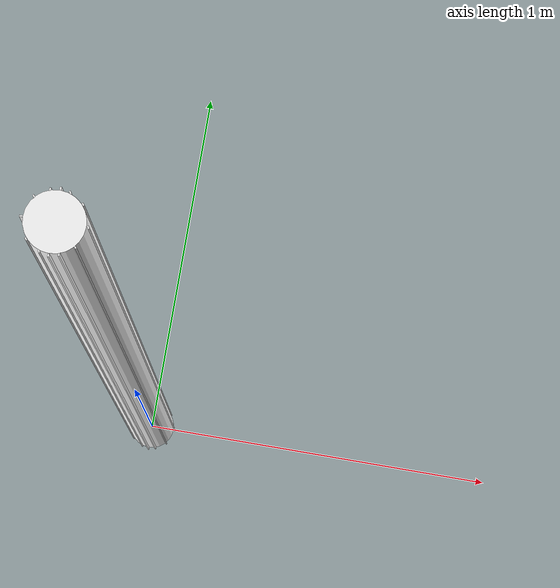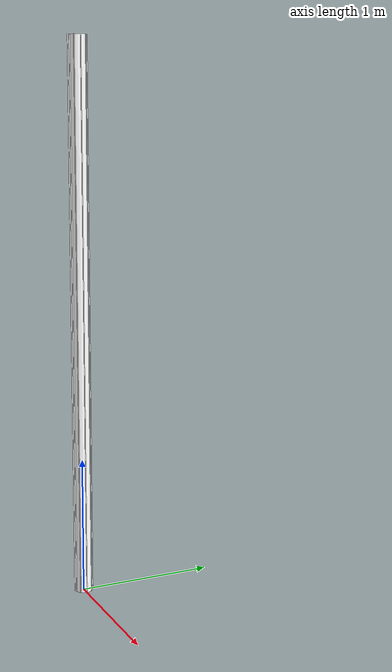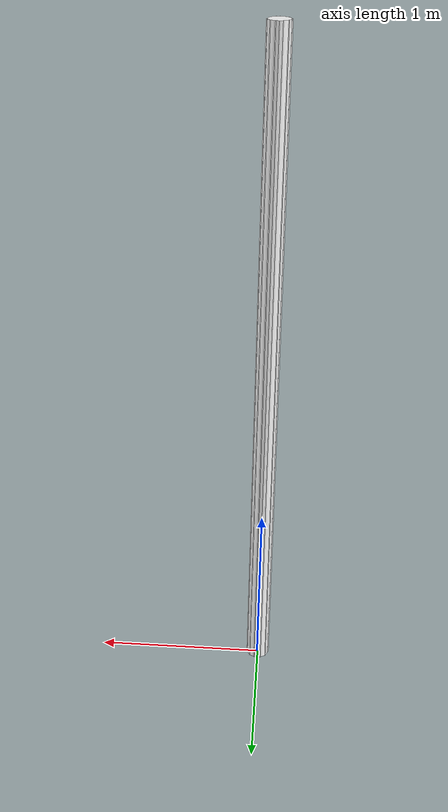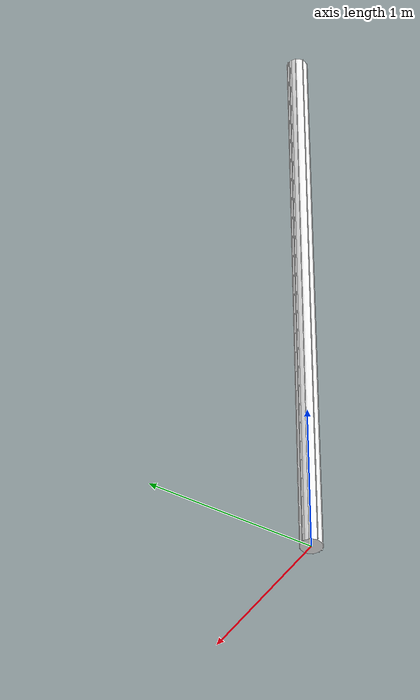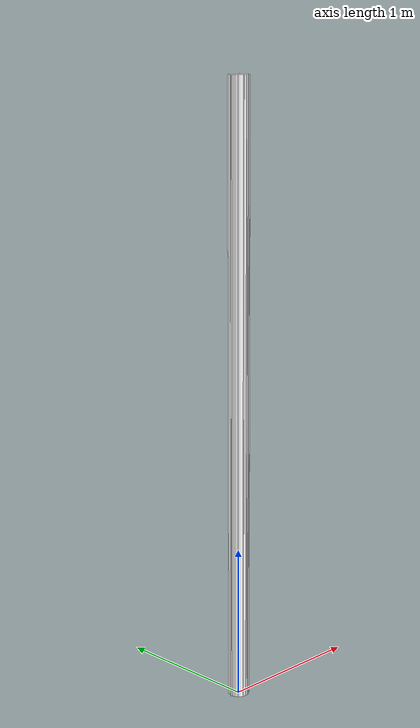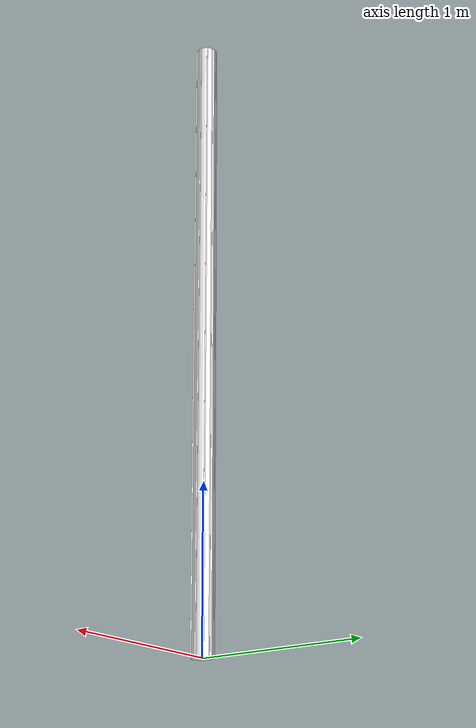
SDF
<sdf version="1.7">
  <model name="tree">
    <static>false</static>
    <joint name='ground_joint' type='fixed'>
      <parent>world</parent>
      <child>body</child>
    </joint>
    <link name="body">
      <pose>0 0 2 0 0 0</pose>
      <inertial>
        <pose>0 0 0 0 0 0</pose>
        <inertia>
          <ixx>0.04312741</ixx>
          <ixy>0</ixy>
          <ixz>0</ixz>
          <iyy>0.04312741</iyy>
          <iyz>0</iyz>
          <izz>0.0000741</izz>
        </inertia>
        <mass>0.0407</mass>
      </inertial>
      <collision name="collision">
        <geometry>
          <cylinder>
            <radius>0.06233</radius>
            <length>4</length>
          </cylinder>
        </geometry>
        <surface>
          <friction>
            <ode>
              <mu>4.8</mu>
              <mu2>4.8</mu2>
            </ode>
          </friction>
        </surface>
      </collision>
      <visual name="visual">
        <geometry>
          <cylinder>
            <radius>0.0633</radius>
            <length>4</length>
          </cylinder>
        </geometry>
        <material>
          <diffuse>1.0 1.0 1.0</diffuse>
          <script>
            <uri>model://tree/materials/scripts/</uri>
            <uri>model://tree/materials/textures/</uri>
            <name>OakTree/Bark</name>
          </script>
        </material>
      </visual>
    </link>
    <link name="surface1">
      <pose relative_to="body">0 0.067 0 0 0 0</pose>
      <inertial>
        <pose>0 0 0 0 0 0</pose>
        <inertia>
          <ixx>0.04312741</ixx>
          <ixy>0</ixy>
          <ixz>0</ixz>
          <iyy>0.04312741</iyy>
          <iyz>0</iyz>
          <izz>0.0000741</izz>
        </inertia>
        <mass>0.0407</mass>
      </inertial>
      <collision name="collision">
        <geometry>
          <box>
            <size>0.00333 0.00667 4</size>
          </box>
        </geometry>
        <surface>
          <friction>
            <ode>
              <mu>4.8</mu>
              <mu2>4.8</mu2>
            </ode>
          </friction>
        </surface>
      </collision>
      <visual name="visual">
        <geometry>
          <box>
            <size>0.00333 0.00667 4</size>
          </box>
        </geometry>
        <material>
          <diffuse>1.0 1.0 1.0</diffuse>
          <script>
            <uri>model://tree/materials/scripts/</uri>
            <uri>model://tree/materials/textures/</uri>
            <name>OakTree/Bark</name>
          </script>
        </material>
      </visual>
    </link>
    <link name="surface2">
      <pose relative_to="body">0 -0.067 0 0 0 0</pose>
      <inertial>
        <pose>0 0 0 0 0 0</pose>
        <inertia>
          <ixx>0.04312741</ixx>
          <ixy>0</ixy>
          <ixz>0</ixz>
          <iyy>0.04312741</iyy>
          <iyz>0</iyz>
          <izz>0.0000741</izz>
        </inertia>
        <mass>0.0407</mass>
      </inertial>
      <collision name="collision">
        <geometry>
          <box>
            <size>0.00333 0.00667 4</size>
          </box>
        </geometry>
        <surface>
          <friction>
            <ode>
              <mu>4.8</mu>
              <mu2>4.8</mu2>
            </ode>
          </friction>
        </surface>
      </collision>
      <visual name="visual">
        <geometry>
          <box>
            <size>0.00333 0.00667 4</size>
          </box>
        </geometry>
        <material>
          <diffuse>1.0 1.0 1.0</diffuse>
          <script>
            <uri>model://tree/materials/scripts/</uri>
            <uri>model://tree/materials/textures/</uri>
            <name>OakTree/Bark</name>
          </script>
        </material>
      </visual>
    </link>
    <link name="surface3">
      <pose relative_to="body">-0.067 0 0 0 0 1.57</pose>
      <inertial>
        <pose>0 0 0 0 0 0</pose>
        <inertia>
          <ixx>0.04312741</ixx>
          <ixy>0</ixy>
          <ixz>0</ixz>
          <iyy>0.04312741</iyy>
          <iyz>0</iyz>
          <izz>0.0000741</izz>
        </inertia>
        <mass>0.0407</mass>
      </inertial>
      <collision name="collision">
        <geometry>
          <box>
            <size>0.00333 0.00667 4</size>
          </box>
        </geometry>
        <surface>
          <friction>
            <ode>
              <mu>4.8</mu>
              <mu2>4.8</mu2>
            </ode>
          </friction>
        </surface>
      </collision>
      <visual name="visual">
        <geometry>
          <box>
            <size>0.00333 0.00667 4</size>
          </box>
        </geometry>
        <material>
          <diffuse>1.0 1.0 1.0</diffuse>
          <script>
            <uri>model://tree/materials/scripts/</uri>
            <uri>model://tree/materials/textures/</uri>
            <name>OakTree/Bark</name>
          </script>
        </material>
      </visual>
    </link>
    <link name="surface4">
      <pose relative_to="body">0.067 0 0 0 0 0.523599</pose>
      <inertial>
        <pose>0 0 0 0 0 0</pose>
        <inertia>
          <ixx>0.04312741</ixx>
          <ixy>0</ixy>
          <ixz>0</ixz>
          <iyy>0.04312741</iyy>
          <iyz>0</iyz>
          <izz>0.0000741</izz>
        </inertia>
        <mass>0.0407</mass>
      </inertial>
      <collision name="collision">
        <geometry>
          <box>
            <size>0.00333 0.00667 4</size>
          </box>
        </geometry>
        <surface>
          <friction>
            <ode>
              <mu>4.8</mu>
              <mu2>4.8</mu2>
            </ode>
          </friction>
        </surface>
      </collision>
      <visual name="visual">
        <geometry>
          <box>
            <size>0.00333 0.00667 4</size>
          </box>
        </geometry>
        <material>
          <diffuse>1.0 1.0 1.0</diffuse>
          <script>
            <uri>model://tree/materials/scripts/</uri>
            <uri>model://tree/materials/textures/</uri>
            <name>OakTree/Bark</name>
          </script>
        </material>
      </visual>
    </link>
    <link name="surface5">
      <pose relative_to="body">-0.02 -0.062 0 0 0 0.523599</pose>
      <inertial>
        <pose>0 0 0 0 0 0</pose>
        <inertia>
          <ixx>0.04312741</ixx>
          <ixy>0</ixy>
          <ixz>0</ixz>
          <iyy>0.04312741</iyy>
          <iyz>0</iyz>
          <izz>0.0000741</izz>
        </inertia>
        <mass>0.0407</mass>
      </inertial>
      <collision name="collision">
        <geometry>
          <box>
            <size>0.00333 0.00667 4</size>
          </box>
        </geometry>
        <surface>
          <friction>
            <ode>
              <mu>4.8</mu>
              <mu2>4.8</mu2>
            </ode>
          </friction>
        </surface>
      </collision>
      <visual name="visual">
        <geometry>
          <box>
            <size>0.00333 0.00667 4</size>
          </box>
        </geometry>
        <material>
          <diffuse>1.0 1.0 1.0</diffuse>
          <script>
            <uri>model://tree/materials/scripts/</uri>
            <uri>model://tree/materials/textures/</uri>
            <name>OakTree/Bark</name>
          </script>
        </material>
      </visual>
    </link>
    <link name="surface6">
      <pose relative_to="body">0.02 0.062 0 0 0 0.523599</pose>
      <inertial>
        <pose>0 0 0 0 0 0</pose>
        <inertia>
          <ixx>0.04312741</ixx>
          <ixy>0</ixy>
          <ixz>0</ixz>
          <iyy>0.04312741</iyy>
          <iyz>0</iyz>
          <izz>0.0000741</izz>
        </inertia>
        <mass>0.0407</mass>
      </inertial>
      <collision name="collision">
        <geometry>
          <box>
            <size>0.00333 0.00667 4</size>
          </box>
        </geometry>
        <surface>
          <friction>
            <ode>
              <mu>4.8</mu>
              <mu2>4.8</mu2>
            </ode>
          </friction>
        </surface>
      </collision>
      <visual name="visual">
        <geometry>
          <box>
            <size>0.00333 0.00667 4</size>
          </box>
        </geometry>
        <material>
          <diffuse>1.0 1.0 1.0</diffuse>
          <script>
            <uri>model://tree/materials/scripts/</uri>
            <uri>model://tree/materials/textures/</uri>
            <name>OakTree/Bark</name>
          </script>
        </material>
      </visual>
    </link>
    <link name="surface7">
      <pose relative_to="body">-0.02 0.062 0 0 0 0</pose>
      <inertial>
        <pose>0 0 0 0 0 0</pose>
        <inertia>
          <ixx>0.04312741</ixx>
          <ixy>0</ixy>
          <ixz>0</ixz>
          <iyy>0.04312741</iyy>
          <iyz>0</iyz>
          <izz>0.0000741</izz>
        </inertia>
        <mass>0.0407</mass>
      </inertial>
      <collision name="collision">
        <geometry>
          <box>
            <size>0.00333 0.00667 4</size>
          </box>
        </geometry>
        <surface>
          <friction>
            <ode>
              <mu>4.8</mu>
              <mu2>4.8</mu2>
            </ode>
          </friction>
        </surface>
      </collision>
      <visual name="visual">
        <geometry>
          <box>
            <size>0.00333 0.00667 4</size>
          </box>
        </geometry>
        <material>
          <diffuse>1.0 1.0 1.0</diffuse>
          <script>
            <uri>model://tree/materials/scripts/</uri>
            <uri>model://tree/materials/textures/</uri>
            <name>OakTree/Bark</name>
          </script>
        </material>
      </visual>
    </link>
    <link name="surface8">
      <pose relative_to="body">0.02 -0.062 0 0 0 0</pose>
      <inertial>
        <pose>0 0 0 0 0 0</pose>
        <inertia>
          <ixx>0.04312741</ixx>
          <ixy>0</ixy>
          <ixz>0</ixz>
          <iyy>0.04312741</iyy>
          <iyz>0</iyz>
          <izz>0.0000741</izz>
        </inertia>
        <mass>0.0407</mass>
      </inertial>
      <collision name="collision">
        <geometry>
          <box>
            <size>0.00333 0.00667 4</size>
          </box>
        </geometry>
        <surface>
          <friction>
            <ode>
              <mu>4.8</mu>
              <mu2>4.8</mu2>
            </ode>
          </friction>
        </surface>
      </collision>
      <visual name="visual">
        <geometry>
          <box>
            <size>0.00333 0.00667 4</size>
          </box>
        </geometry>
        <material>
          <diffuse>1.0 1.0 1.0</diffuse>
          <script>
            <uri>model://tree/materials/scripts/</uri>
            <uri>model://tree/materials/textures/</uri>
            <name>OakTree/Bark</name>
          </script>
        </material>
      </visual>
    </link>
    <link name="surface9">
      <pose relative_to="body">0.049 0.043 0 0 0 0.698132</pose>
      <inertial>
        <pose>0 0 0 0 0 0</pose>
        <inertia>
          <ixx>0.04312741</ixx>
          <ixy>0</ixy>
          <ixz>0</ixz>
          <iyy>0.04312741</iyy>
          <iyz>0</iyz>
          <izz>0.0000741</izz>
        </inertia>
        <mass>0.0407</mass>
      </inertial>
      <collision name="collision">
        <geometry>
          <box>
            <size>0.00333 0.00667 4</size>
          </box>
        </geometry>
        <surface>
          <friction>
            <ode>
              <mu>4.8</mu>
              <mu2>4.8</mu2>
            </ode>
          </friction>
        </surface>
      </collision>
      <visual name="visual">
        <geometry>
          <box>
            <size>0.00333 0.00667 4</size>
          </box>
        </geometry>
        <material>
          <diffuse>1.0 1.0 1.0</diffuse>
          <script>
            <uri>model://tree/materials/scripts/</uri>
            <uri>model://tree/materials/textures/</uri>
            <name>OakTree/Bark</name>
          </script>
        </material>
      </visual>
    </link>
    <link name="surface10">
      <pose relative_to="body">-0.049 0.043 0 0 0 0.698132</pose>
      <inertial>
        <pose>0 0 0 0 0 0</pose>
        <inertia>
          <ixx>0.04312741</ixx>
          <ixy>0</ixy>
          <ixz>0</ixz>
          <iyy>0.04312741</iyy>
          <iyz>0</iyz>
          <izz>0.0000741</izz>
        </inertia>
        <mass>0.0407</mass>
      </inertial>
      <collision name="collision">
        <geometry>
          <box>
            <size>0.00333 0.00667 4</size>
          </box>
        </geometry>
        <surface>
          <friction>
            <ode>
              <mu>4.8</mu>
              <mu2>4.8</mu2>
            </ode>
          </friction>
        </surface>
      </collision>
      <visual name="visual">
        <geometry>
          <box>
            <size>0.00333 0.00667 4</size>
          </box>
        </geometry>
        <material>
          <diffuse>1.0 1.0 1.0</diffuse>
          <script>
            <uri>model://tree/materials/scripts/</uri>
            <uri>model://tree/materials/textures/</uri>
            <name>OakTree/Bark</name>
          </script>
        </material>
      </visual>
    </link>
    <link name="surface11">
      <pose relative_to="body">0.049 -0.043 0 0 0 0.698132</pose>
      <inertial>
        <pose>0 0 0 0 0 0</pose>
        <inertia>
          <ixx>0.04312741</ixx>
          <ixy>0</ixy>
          <ixz>0</ixz>
          <iyy>0.04312741</iyy>
          <iyz>0</iyz>
          <izz>0.0000741</izz>
        </inertia>
        <mass>0.0407</mass>
      </inertial>
      <collision name="collision">
        <geometry>
          <box>
            <size>0.00333 0.00667 4</size>
          </box>
        </geometry>
        <surface>
          <friction>
            <ode>
              <mu>4.8</mu>
              <mu2>4.8</mu2>
            </ode>
          </friction>
        </surface>
      </collision>
      <visual name="visual">
        <geometry>
          <box>
            <size>0.00333 0.00667 4</size>
          </box>
        </geometry>
        <material>
          <diffuse>1.0 1.0 1.0</diffuse>
          <script>
            <uri>model://tree/materials/scripts/</uri>
            <uri>model://tree/materials/textures/</uri>
            <name>OakTree/Bark</name>
          </script>
        </material>
      </visual>
    </link>
    <link name="surface12">
      <pose relative_to="body">-0.049 -0.043 0 0 0 0.698132</pose>
      <inertial>
        <pose>0 0 0 0 0 0</pose>
        <inertia>
          <ixx>0.04312741</ixx>
          <ixy>0</ixy>
          <ixz>0</ixz>
          <iyy>0.04312741</iyy>
          <iyz>0</iyz>
          <izz>0.0000741</izz>
        </inertia>
        <mass>0.0407</mass>
      </inertial>
      <collision name="collision">
        <geometry>
          <box>
            <size>0.00333 0.00667 4</size>
          </box>
        </geometry>
        <surface>
          <friction>
            <ode>
              <mu>4.8</mu>
              <mu2>4.8</mu2>
            </ode>
          </friction>
        </surface>
      </collision>
      <visual name="visual">
        <geometry>
          <box>
            <size>0.00333 0.00667 4</size>
          </box>
        </geometry>
        <material>
          <diffuse>1.0 1.0 1.0</diffuse>
          <script>
            <uri>model://tree/materials/scripts/</uri>
            <uri>model://tree/materials/textures/</uri>
            <name>OakTree/Bark</name>
          </script>
        </material>
      </visual>
    </link>

     <joint name='joint1' type='fixed'>
        <parent>body</parent>
        <child>surface1</child>
    </joint>
    <joint name='joint2' type='fixed'>
        <parent>body</parent>
        <child>surface2</child>
    </joint>
    <joint name='joint3' type='fixed'>
        <parent>body</parent>
        <child>surface3</child>
    </joint>
    <joint name='joint4' type='fixed'>
        <parent>body</parent>
        <child>surface4</child>
    </joint>
    <joint name='joint5' type='fixed'>
        <parent>body</parent>
        <child>surface5</child>
    </joint>
    <joint name='joint6' type='fixed'>
        <parent>body</parent>
        <child>surface6</child>
    </joint>
    <joint name='joint7' type='fixed'>
        <parent>body</parent>
        <child>surface7</child>
    </joint>
    <joint name='joint8' type='fixed'>
        <parent>body</parent>
        <child>surface8</child>
    </joint>
    <joint name='joint9' type='fixed'>
        <parent>body</parent>
        <child>surface9</child>
    </joint>
    <joint name='joint10' type='fixed'>
        <parent>body</parent>
        <child>surface10</child>
    </joint>
    <joint name='joint11' type='fixed'>
        <parent>body</parent>
        <child>surface11</child>
    </joint>
    <joint name='joint12' type='fixed'>
        <parent>body</parent>
        <child>surface12</child>
    </joint>
  </model>
</sdf>
